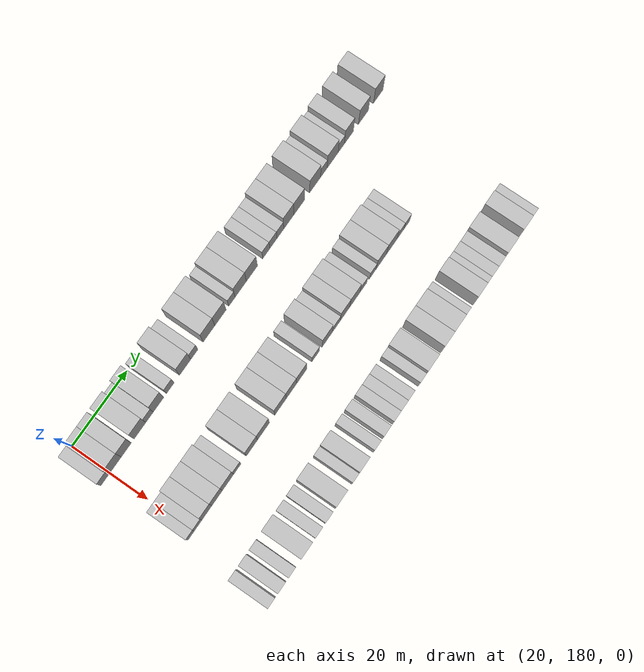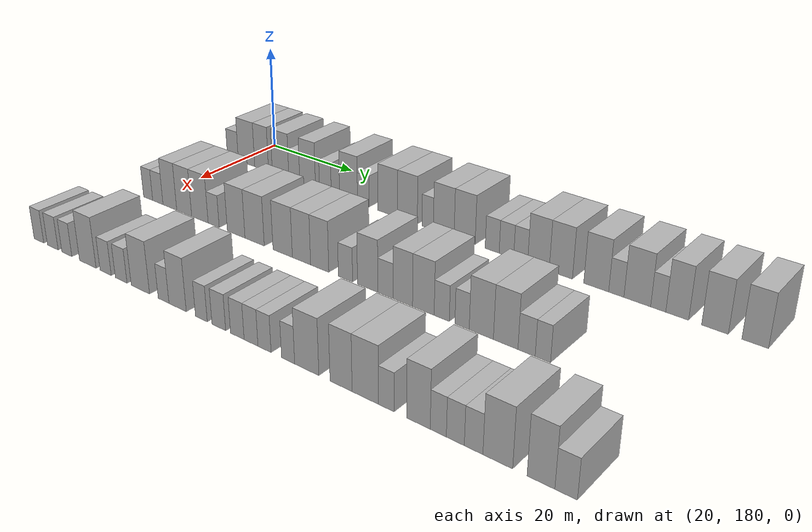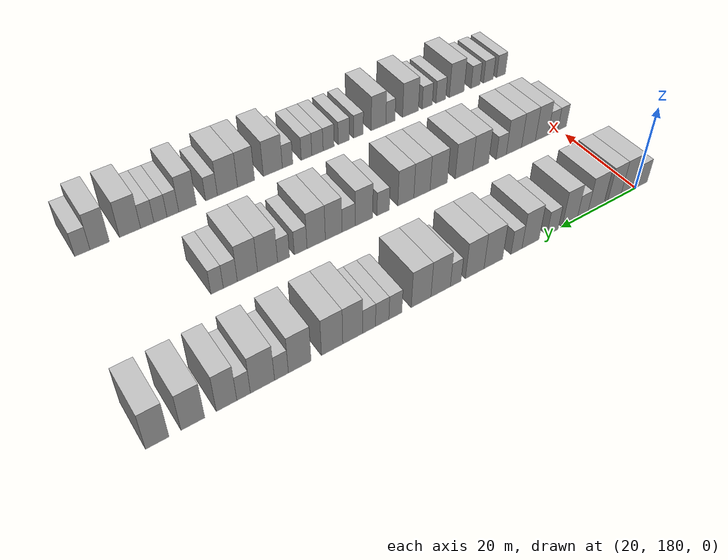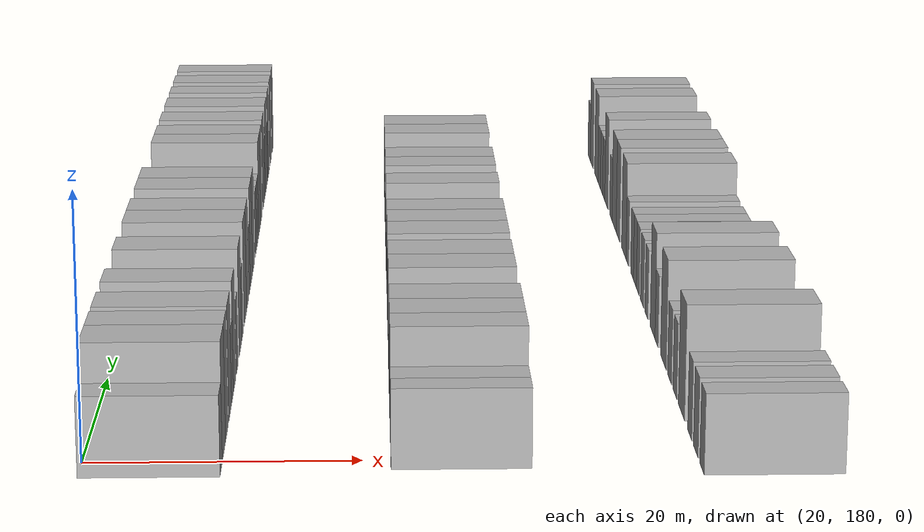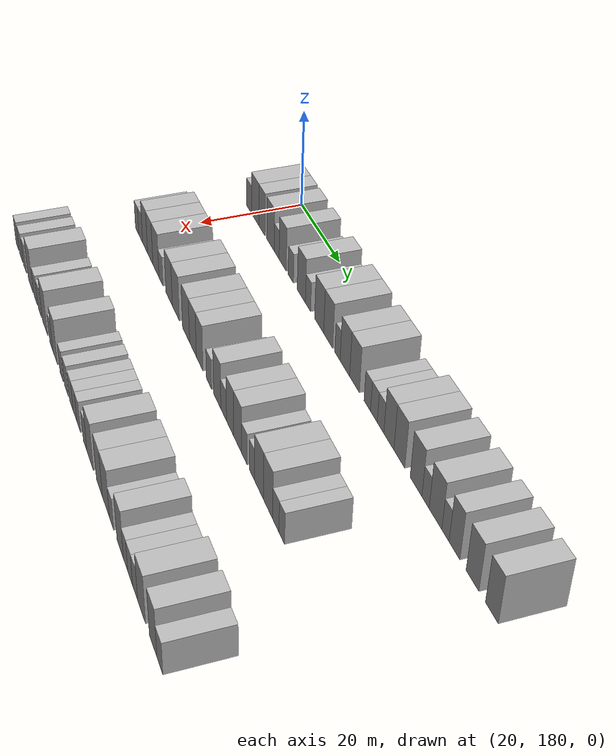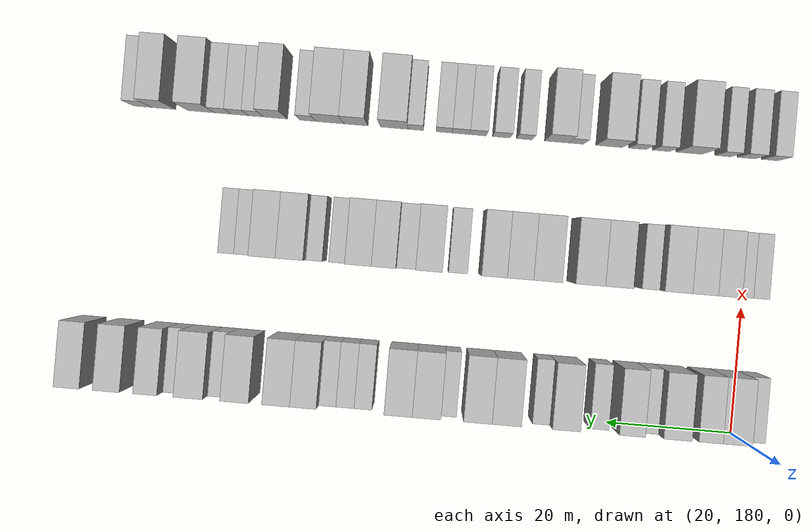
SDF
<sdf version="1.6">
 <world name="default">
  <model name="building_146">
   <static>1</static>
   <pose>25.0000 178.2394 0 0.000000 0.000000 0.000000</pose>
   <link name="link">
    <pose>0 0 3.00 0 0 0</pose>
    <collision name="collision"><geometry><box><size>10.0000 2.9960 6.0000</size></box></geometry></collision>
    <visual name="visual">
     <cast_shadows>0</cast_shadows>
     <geometry><box><size>10.0000 2.9960 6.0000</size></box></geometry>
     <material>
      <script>
       <uri>model://HANNAS_wall/materials/scripts</uri>
       <uri>model://HANNAS_wall/materials/textures</uri>
       <name>vrc/HANNAS_wall</name>
      </script>
     </material>
    </visual>
   </link>
  </model>
  <model name="building_147">
   <static>1</static>
   <pose>25.0000 181.9585 0 0.000000 0.000000 0.000000</pose>
   <link name="link">
    <pose>0 0 4.50 0 0 0</pose>
    <collision name="collision"><geometry><box><size>10.0000 4.4420 9.0000</size></box></geometry></collision>
    <visual name="visual">
     <cast_shadows>0</cast_shadows>
     <geometry><box><size>10.0000 4.4420 9.0000</size></box></geometry>
     <material>
      <script>
       <uri>model://HANNAS_wall/materials/scripts</uri>
       <uri>model://HANNAS_wall/materials/textures</uri>
       <name>vrc/HANNAS_wall</name>
      </script>
     </material>
    </visual>
   </link>
  </model>
  <model name="building_148">
   <static>1</static>
   <pose>25.0000 186.0088 0 0.000000 0.000000 0.000000</pose>
   <link name="link">
    <pose>0 0 4.50 0 0 0</pose>
    <collision name="collision"><geometry><box><size>10.0000 3.6587 9.0000</size></box></geometry></collision>
    <visual name="visual">
     <cast_shadows>0</cast_shadows>
     <geometry><box><size>10.0000 3.6587 9.0000</size></box></geometry>
     <material>
      <script>
       <uri>model://HANNAS_wall/materials/scripts</uri>
       <uri>model://HANNAS_wall/materials/textures</uri>
       <name>vrc/HANNAS_wall</name>
      </script>
     </material>
    </visual>
   </link>
  </model>
  <model name="building_149">
   <static>1</static>
   <pose>25.0000 190.9778 0 0.000000 0.000000 0.000000</pose>
   <link name="link">
    <pose>0 0 4.50 0 0 0</pose>
    <collision name="collision"><geometry><box><size>10.0000 4.2793 9.0000</size></box></geometry></collision>
    <visual name="visual">
     <cast_shadows>0</cast_shadows>
     <geometry><box><size>10.0000 4.2793 9.0000</size></box></geometry>
     <material>
      <script>
       <uri>model://HANNAS_wall/materials/scripts</uri>
       <uri>model://HANNAS_wall/materials/textures</uri>
       <name>vrc/HANNAS_wall</name>
      </script>
     </material>
    </visual>
   </link>
  </model>
  <model name="building_150">
   <static>1</static>
   <pose>25.0000 194.4975 0 0.000000 0.000000 0.000000</pose>
   <link name="link">
    <pose>0 0 3.00 0 0 0</pose>
    <collision name="collision"><geometry><box><size>10.0000 2.7600 6.0000</size></box></geometry></collision>
    <visual name="visual">
     <cast_shadows>0</cast_shadows>
     <geometry><box><size>10.0000 2.7600 6.0000</size></box></geometry>
     <material>
      <script>
       <uri>model://HANNAS_wall/materials/scripts</uri>
       <uri>model://HANNAS_wall/materials/textures</uri>
       <name>vrc/HANNAS_wall</name>
      </script>
     </material>
    </visual>
   </link>
  </model>
  <model name="building_151">
   <static>1</static>
   <pose>25.0000 197.8251 0 0.000000 0.000000 0.000000</pose>
   <link name="link">
    <pose>0 0 4.50 0 0 0</pose>
    <collision name="collision"><geometry><box><size>10.0000 3.8953 9.0000</size></box></geometry></collision>
    <visual name="visual">
     <cast_shadows>0</cast_shadows>
     <geometry><box><size>10.0000 3.8953 9.0000</size></box></geometry>
     <material>
      <script>
       <uri>model://HANNAS_wall/materials/scripts</uri>
       <uri>model://HANNAS_wall/materials/textures</uri>
       <name>vrc/HANNAS_wall</name>
      </script>
     </material>
    </visual>
   </link>
  </model>
  <model name="building_152">
   <static>1</static>
   <pose>25.0000 202.1901 0 0.000000 0.000000 0.000000</pose>
   <link name="link">
    <pose>0 0 3.00 0 0 0</pose>
    <collision name="collision"><geometry><box><size>10.0000 2.8348 6.0000</size></box></geometry></collision>
    <visual name="visual">
     <cast_shadows>0</cast_shadows>
     <geometry><box><size>10.0000 2.8348 6.0000</size></box></geometry>
     <material>
      <script>
       <uri>model://HANNAS_wall/materials/scripts</uri>
       <uri>model://HANNAS_wall/materials/textures</uri>
       <name>vrc/HANNAS_wall</name>
      </script>
     </material>
    </visual>
   </link>
  </model>
  <model name="building_153">
   <static>1</static>
   <pose>25.0000 207.7115 0 0.000000 0.000000 0.000000</pose>
   <link name="link">
    <pose>0 0 4.50 0 0 0</pose>
    <collision name="collision"><geometry><box><size>10.0000 4.2080 9.0000</size></box></geometry></collision>
    <visual name="visual">
     <cast_shadows>0</cast_shadows>
     <geometry><box><size>10.0000 4.2080 9.0000</size></box></geometry>
     <material>
      <script>
       <uri>model://HANNAS_wall/materials/scripts</uri>
       <uri>model://HANNAS_wall/materials/textures</uri>
       <name>vrc/HANNAS_wall</name>
      </script>
     </material>
    </visual>
   </link>
  </model>
  <model name="building_154">
   <static>1</static>
   <pose>25.0000 211.1468 0 0.000000 0.000000 0.000000</pose>
   <link name="link">
    <pose>0 0 3.00 0 0 0</pose>
    <collision name="collision"><geometry><box><size>10.0000 2.6626 6.0000</size></box></geometry></collision>
    <visual name="visual">
     <cast_shadows>0</cast_shadows>
     <geometry><box><size>10.0000 2.6626 6.0000</size></box></geometry>
     <material>
      <script>
       <uri>model://HANNAS_wall/materials/scripts</uri>
       <uri>model://HANNAS_wall/materials/textures</uri>
       <name>vrc/HANNAS_wall</name>
      </script>
     </material>
    </visual>
   </link>
  </model>
  <model name="building_155">
   <static>1</static>
   <pose>25.0000 216.6830 0 0.000000 0.000000 0.000000</pose>
   <link name="link">
    <pose>0 0 4.50 0 0 0</pose>
    <collision name="collision"><geometry><box><size>10.0000 4.4098 9.0000</size></box></geometry></collision>
    <visual name="visual">
     <cast_shadows>0</cast_shadows>
     <geometry><box><size>10.0000 4.4098 9.0000</size></box></geometry>
     <material>
      <script>
       <uri>model://HANNAS_wall/materials/scripts</uri>
       <uri>model://HANNAS_wall/materials/textures</uri>
       <name>vrc/HANNAS_wall</name>
      </script>
     </material>
    </visual>
   </link>
  </model>
  <model name="building_156">
   <static>1</static>
   <pose>25.0000 221.0291 0 0.000000 0.000000 0.000000</pose>
   <link name="link">
    <pose>0 0 4.50 0 0 0</pose>
    <collision name="collision"><geometry><box><size>10.0000 4.2823 9.0000</size></box></geometry></collision>
    <visual name="visual">
     <cast_shadows>0</cast_shadows>
     <geometry><box><size>10.0000 4.2823 9.0000</size></box></geometry>
     <material>
      <script>
       <uri>model://HANNAS_wall/materials/scripts</uri>
       <uri>model://HANNAS_wall/materials/textures</uri>
       <name>vrc/HANNAS_wall</name>
      </script>
     </material>
    </visual>
   </link>
  </model>
  <model name="building_157">
   <static>1</static>
   <pose>25.0000 225.3795 0 0.000000 0.000000 0.000000</pose>
   <link name="link">
    <pose>0 0 3.00 0 0 0</pose>
    <collision name="collision"><geometry><box><size>10.0000 2.4184 6.0000</size></box></geometry></collision>
    <visual name="visual">
     <cast_shadows>0</cast_shadows>
     <geometry><box><size>10.0000 2.4184 6.0000</size></box></geometry>
     <material>
      <script>
       <uri>model://HANNAS_wall/materials/scripts</uri>
       <uri>model://HANNAS_wall/materials/textures</uri>
       <name>vrc/HANNAS_wall</name>
      </script>
     </material>
    </visual>
   </link>
  </model>
  <model name="building_158">
   <static>1</static>
   <pose>25.0000 228.7411 0 0.000000 0.000000 0.000000</pose>
   <link name="link">
    <pose>0 0 4.50 0 0 0</pose>
    <collision name="collision"><geometry><box><size>10.0000 4.3048 9.0000</size></box></geometry></collision>
    <visual name="visual">
     <cast_shadows>0</cast_shadows>
     <geometry><box><size>10.0000 4.3048 9.0000</size></box></geometry>
     <material>
      <script>
       <uri>model://HANNAS_wall/materials/scripts</uri>
       <uri>model://HANNAS_wall/materials/textures</uri>
       <name>vrc/HANNAS_wall</name>
      </script>
     </material>
    </visual>
   </link>
  </model>
  <model name="building_159">
   <static>1</static>
   <pose>25.0000 233.0238 0 0.000000 0.000000 0.000000</pose>
   <link name="link">
    <pose>0 0 4.50 0 0 0</pose>
    <collision name="collision"><geometry><box><size>10.0000 4.2606 9.0000</size></box></geometry></collision>
    <visual name="visual">
     <cast_shadows>0</cast_shadows>
     <geometry><box><size>10.0000 4.2606 9.0000</size></box></geometry>
     <material>
      <script>
       <uri>model://HANNAS_wall/materials/scripts</uri>
       <uri>model://HANNAS_wall/materials/textures</uri>
       <name>vrc/HANNAS_wall</name>
      </script>
     </material>
    </visual>
   </link>
  </model>
  <model name="building_160">
   <static>1</static>
   <pose>25.0000 238.5244 0 0.000000 0.000000 0.000000</pose>
   <link name="link">
    <pose>0 0 3.00 0 0 0</pose>
    <collision name="collision"><geometry><box><size>10.0000 2.7406 6.0000</size></box></geometry></collision>
    <visual name="visual">
     <cast_shadows>0</cast_shadows>
     <geometry><box><size>10.0000 2.7406 6.0000</size></box></geometry>
     <material>
      <script>
       <uri>model://HANNAS_wall/materials/scripts</uri>
       <uri>model://HANNAS_wall/materials/textures</uri>
       <name>vrc/HANNAS_wall</name>
      </script>
     </material>
    </visual>
   </link>
  </model>
  <model name="building_161">
   <static>1</static>
   <pose>25.0000 241.2901 0 0.000000 0.000000 0.000000</pose>
   <link name="link">
    <pose>0 0 3.00 0 0 0</pose>
    <collision name="collision"><geometry><box><size>10.0000 2.7908 6.0000</size></box></geometry></collision>
    <visual name="visual">
     <cast_shadows>0</cast_shadows>
     <geometry><box><size>10.0000 2.7908 6.0000</size></box></geometry>
     <material>
      <script>
       <uri>model://HANNAS_wall/materials/scripts</uri>
       <uri>model://HANNAS_wall/materials/textures</uri>
       <name>vrc/HANNAS_wall</name>
      </script>
     </material>
    </visual>
   </link>
  </model>
  <model name="building_162">
   <static>1</static>
   <pose>25.0000 244.0082 0 0.000000 0.000000 0.000000</pose>
   <link name="link">
    <pose>0 0 3.00 0 0 0</pose>
    <collision name="collision"><geometry><box><size>10.0000 2.6453 6.0000</size></box></geometry></collision>
    <visual name="visual">
     <cast_shadows>0</cast_shadows>
     <geometry><box><size>10.0000 2.6453 6.0000</size></box></geometry>
     <material>
      <script>
       <uri>model://HANNAS_wall/materials/scripts</uri>
       <uri>model://HANNAS_wall/materials/textures</uri>
       <name>vrc/HANNAS_wall</name>
      </script>
     </material>
    </visual>
   </link>
  </model>
  <model name="building_163">
   <static>1</static>
   <pose>25.0000 247.3229 0 0.000000 0.000000 0.000000</pose>
   <link name="link">
    <pose>0 0 4.50 0 0 0</pose>
    <collision name="collision"><geometry><box><size>10.0000 3.9841 9.0000</size></box></geometry></collision>
    <visual name="visual">
     <cast_shadows>0</cast_shadows>
     <geometry><box><size>10.0000 3.9841 9.0000</size></box></geometry>
     <material>
      <script>
       <uri>model://HANNAS_wall/materials/scripts</uri>
       <uri>model://HANNAS_wall/materials/textures</uri>
       <name>vrc/HANNAS_wall</name>
      </script>
     </material>
    </visual>
   </link>
  </model>
  <model name="building_164">
   <static>1</static>
   <pose>25.0000 251.4096 0 0.000000 0.000000 0.000000</pose>
   <link name="link">
    <pose>0 0 4.50 0 0 0</pose>
    <collision name="collision"><geometry><box><size>10.0000 4.1894 9.0000</size></box></geometry></collision>
    <visual name="visual">
     <cast_shadows>0</cast_shadows>
     <geometry><box><size>10.0000 4.1894 9.0000</size></box></geometry>
     <material>
      <script>
       <uri>model://HANNAS_wall/materials/scripts</uri>
       <uri>model://HANNAS_wall/materials/textures</uri>
       <name>vrc/HANNAS_wall</name>
      </script>
     </material>
    </visual>
   </link>
  </model>
  <model name="building_165">
   <static>1</static>
   <pose>25.0000 257.6601 0 0.000000 0.000000 0.000000</pose>
   <link name="link">
    <pose>0 0 4.50 0 0 0</pose>
    <collision name="collision"><geometry><box><size>10.0000 4.3117 9.0000</size></box></geometry></collision>
    <visual name="visual">
     <cast_shadows>0</cast_shadows>
     <geometry><box><size>10.0000 4.3117 9.0000</size></box></geometry>
     <material>
      <script>
       <uri>model://HANNAS_wall/materials/scripts</uri>
       <uri>model://HANNAS_wall/materials/textures</uri>
       <name>vrc/HANNAS_wall</name>
      </script>
     </material>
    </visual>
   </link>
  </model>
  <model name="building_166">
   <static>1</static>
   <pose>25.0000 261.1040 0 0.000000 0.000000 0.000000</pose>
   <link name="link">
    <pose>0 0 3.00 0 0 0</pose>
    <collision name="collision"><geometry><box><size>10.0000 2.5760 6.0000</size></box></geometry></collision>
    <visual name="visual">
     <cast_shadows>0</cast_shadows>
     <geometry><box><size>10.0000 2.5760 6.0000</size></box></geometry>
     <material>
      <script>
       <uri>model://HANNAS_wall/materials/scripts</uri>
       <uri>model://HANNAS_wall/materials/textures</uri>
       <name>vrc/HANNAS_wall</name>
      </script>
     </material>
    </visual>
   </link>
  </model>
  <model name="building_167">
   <static>1</static>
   <pose>25.0000 264.6006 0 0.000000 0.000000 0.000000</pose>
   <link name="link">
    <pose>0 0 4.50 0 0 0</pose>
    <collision name="collision"><geometry><box><size>10.0000 4.4172 9.0000</size></box></geometry></collision>
    <visual name="visual">
     <cast_shadows>0</cast_shadows>
     <geometry><box><size>10.0000 4.4172 9.0000</size></box></geometry>
     <material>
      <script>
       <uri>model://HANNAS_wall/materials/scripts</uri>
       <uri>model://HANNAS_wall/materials/textures</uri>
       <name>vrc/HANNAS_wall</name>
      </script>
     </material>
    </visual>
   </link>
  </model>
  <model name="building_168">
   <static>1</static>
   <pose>25.0000 268.0297 0 0.000000 0.000000 0.000000</pose>
   <link name="link">
    <pose>0 0 3.00 0 0 0</pose>
    <collision name="collision"><geometry><box><size>10.0000 2.4409 6.0000</size></box></geometry></collision>
    <visual name="visual">
     <cast_shadows>0</cast_shadows>
     <geometry><box><size>10.0000 2.4409 6.0000</size></box></geometry>
     <material>
      <script>
       <uri>model://HANNAS_wall/materials/scripts</uri>
       <uri>model://HANNAS_wall/materials/textures</uri>
       <name>vrc/HANNAS_wall</name>
      </script>
     </material>
    </visual>
   </link>
  </model>
  <model name="building_169">
   <static>1</static>
   <pose>25.0000 271.0596 0 0.000000 0.000000 0.000000</pose>
   <link name="link">
    <pose>0 0 4.50 0 0 0</pose>
    <collision name="collision"><geometry><box><size>10.0000 3.6190 9.0000</size></box></geometry></collision>
    <visual name="visual">
     <cast_shadows>0</cast_shadows>
     <geometry><box><size>10.0000 3.6190 9.0000</size></box></geometry>
     <material>
      <script>
       <uri>model://HANNAS_wall/materials/scripts</uri>
       <uri>model://HANNAS_wall/materials/textures</uri>
       <name>vrc/HANNAS_wall</name>
      </script>
     </material>
    </visual>
   </link>
  </model>
  <model name="building_170">
   <static>1</static>
   <pose>25.0000 276.8958 0 0.000000 0.000000 0.000000</pose>
   <link name="link">
    <pose>0 0 4.50 0 0 0</pose>
    <collision name="collision"><geometry><box><size>10.0000 4.0534 9.0000</size></box></geometry></collision>
    <visual name="visual">
     <cast_shadows>0</cast_shadows>
     <geometry><box><size>10.0000 4.0534 9.0000</size></box></geometry>
     <material>
      <script>
       <uri>model://HANNAS_wall/materials/scripts</uri>
       <uri>model://HANNAS_wall/materials/textures</uri>
       <name>vrc/HANNAS_wall</name>
      </script>
     </material>
    </visual>
   </link>
  </model>
  <model name="building_171">
   <static>1</static>
   <pose>25.0000 282.8653 0 0.000000 0.000000 0.000000</pose>
   <link name="link">
    <pose>0 0 4.50 0 0 0</pose>
    <collision name="collision"><geometry><box><size>10.0000 3.8855 9.0000</size></box></geometry></collision>
    <visual name="visual">
     <cast_shadows>0</cast_shadows>
     <geometry><box><size>10.0000 3.8855 9.0000</size></box></geometry>
     <material>
      <script>
       <uri>model://HANNAS_wall/materials/scripts</uri>
       <uri>model://HANNAS_wall/materials/textures</uri>
       <name>vrc/HANNAS_wall</name>
      </script>
     </material>
    </visual>
   </link>
  </model>
  <model name="building_337">
   <static>1</static>
   <pose>47.0000 179.1716 0 0.000000 0.000000 0.000000</pose>
   <link name="link">
    <pose>0 0 3.00 0 0 0</pose>
    <collision name="collision"><geometry><box><size>10.0000 2.4528 6.0000</size></box></geometry></collision>
    <visual name="visual">
     <cast_shadows>0</cast_shadows>
     <geometry><box><size>10.0000 2.4528 6.0000</size></box></geometry>
     <material>
      <script>
       <uri>model://HANNAS_wall/materials/scripts</uri>
       <uri>model://HANNAS_wall/materials/textures</uri>
       <name>vrc/HANNAS_wall</name>
      </script>
     </material>
    </visual>
   </link>
  </model>
  <model name="building_338">
   <static>1</static>
   <pose>47.0000 181.7850 0 0.000000 0.000000 0.000000</pose>
   <link name="link">
    <pose>0 0 3.00 0 0 0</pose>
    <collision name="collision"><geometry><box><size>10.0000 2.7741 6.0000</size></box></geometry></collision>
    <visual name="visual">
     <cast_shadows>0</cast_shadows>
     <geometry><box><size>10.0000 2.7741 6.0000</size></box></geometry>
     <material>
      <script>
       <uri>model://HANNAS_wall/materials/scripts</uri>
       <uri>model://HANNAS_wall/materials/textures</uri>
       <name>vrc/HANNAS_wall</name>
      </script>
     </material>
    </visual>
   </link>
  </model>
  <model name="building_339">
   <static>1</static>
   <pose>47.0000 184.9766 0 0.000000 0.000000 0.000000</pose>
   <link name="link">
    <pose>0 0 4.50 0 0 0</pose>
    <collision name="collision"><geometry><box><size>10.0000 3.6090 9.0000</size></box></geometry></collision>
    <visual name="visual">
     <cast_shadows>0</cast_shadows>
     <geometry><box><size>10.0000 3.6090 9.0000</size></box></geometry>
     <material>
      <script>
       <uri>model://HANNAS_wall/materials/scripts</uri>
       <uri>model://HANNAS_wall/materials/textures</uri>
       <name>vrc/HANNAS_wall</name>
      </script>
     </material>
    </visual>
   </link>
  </model>
  <model name="building_340">
   <static>1</static>
   <pose>47.0000 188.7111 0 0.000000 0.000000 0.000000</pose>
   <link name="link">
    <pose>0 0 4.50 0 0 0</pose>
    <collision name="collision"><geometry><box><size>10.0000 3.8599 9.0000</size></box></geometry></collision>
    <visual name="visual">
     <cast_shadows>0</cast_shadows>
     <geometry><box><size>10.0000 3.8599 9.0000</size></box></geometry>
     <material>
      <script>
       <uri>model://HANNAS_wall/materials/scripts</uri>
       <uri>model://HANNAS_wall/materials/textures</uri>
       <name>vrc/HANNAS_wall</name>
      </script>
     </material>
    </visual>
   </link>
  </model>
  <model name="building_341">
   <static>1</static>
   <pose>47.0000 192.7140 0 0.000000 0.000000 0.000000</pose>
   <link name="link">
    <pose>0 0 4.50 0 0 0</pose>
    <collision name="collision"><geometry><box><size>10.0000 4.1460 9.0000</size></box></geometry></collision>
    <visual name="visual">
     <cast_shadows>0</cast_shadows>
     <geometry><box><size>10.0000 4.1460 9.0000</size></box></geometry>
     <material>
      <script>
       <uri>model://HANNAS_wall/materials/scripts</uri>
       <uri>model://HANNAS_wall/materials/textures</uri>
       <name>vrc/HANNAS_wall</name>
      </script>
     </material>
    </visual>
   </link>
  </model>
  <model name="building_342">
   <static>1</static>
   <pose>47.0000 196.1461 0 0.000000 0.000000 0.000000</pose>
   <link name="link">
    <pose>0 0 3.00 0 0 0</pose>
    <collision name="collision"><geometry><box><size>10.0000 2.7181 6.0000</size></box></geometry></collision>
    <visual name="visual">
     <cast_shadows>0</cast_shadows>
     <geometry><box><size>10.0000 2.7181 6.0000</size></box></geometry>
     <material>
      <script>
       <uri>model://HANNAS_wall/materials/scripts</uri>
       <uri>model://HANNAS_wall/materials/textures</uri>
       <name>vrc/HANNAS_wall</name>
      </script>
     </material>
    </visual>
   </link>
  </model>
  <model name="building_343">
   <static>1</static>
   <pose>47.0000 201.6091 0 0.000000 0.000000 0.000000</pose>
   <link name="link">
    <pose>0 0 4.50 0 0 0</pose>
    <collision name="collision"><geometry><box><size>10.0000 4.2081 9.0000</size></box></geometry></collision>
    <visual name="visual">
     <cast_shadows>0</cast_shadows>
     <geometry><box><size>10.0000 4.2081 9.0000</size></box></geometry>
     <material>
      <script>
       <uri>model://HANNAS_wall/materials/scripts</uri>
       <uri>model://HANNAS_wall/materials/textures</uri>
       <name>vrc/HANNAS_wall</name>
      </script>
     </material>
    </visual>
   </link>
  </model>
  <model name="building_344">
   <static>1</static>
   <pose>47.0000 205.9500 0 0.000000 0.000000 0.000000</pose>
   <link name="link">
    <pose>0 0 4.50 0 0 0</pose>
    <collision name="collision"><geometry><box><size>10.0000 4.4737 9.0000</size></box></geometry></collision>
    <visual name="visual">
     <cast_shadows>0</cast_shadows>
     <geometry><box><size>10.0000 4.4737 9.0000</size></box></geometry>
     <material>
      <script>
       <uri>model://HANNAS_wall/materials/scripts</uri>
       <uri>model://HANNAS_wall/materials/textures</uri>
       <name>vrc/HANNAS_wall</name>
      </script>
     </material>
    </visual>
   </link>
  </model>
  <model name="building_345">
   <static>1</static>
   <pose>47.0000 212.3474 0 0.000000 0.000000 0.000000</pose>
   <link name="link">
    <pose>0 0 4.50 0 0 0</pose>
    <collision name="collision"><geometry><box><size>10.0000 4.3212 9.0000</size></box></geometry></collision>
    <visual name="visual">
     <cast_shadows>0</cast_shadows>
     <geometry><box><size>10.0000 4.3212 9.0000</size></box></geometry>
     <material>
      <script>
       <uri>model://HANNAS_wall/materials/scripts</uri>
       <uri>model://HANNAS_wall/materials/textures</uri>
       <name>vrc/HANNAS_wall</name>
      </script>
     </material>
    </visual>
   </link>
  </model>
  <model name="building_346">
   <static>1</static>
   <pose>47.0000 216.4949 0 0.000000 0.000000 0.000000</pose>
   <link name="link">
    <pose>0 0 4.50 0 0 0</pose>
    <collision name="collision"><geometry><box><size>10.0000 3.9738 9.0000</size></box></geometry></collision>
    <visual name="visual">
     <cast_shadows>0</cast_shadows>
     <geometry><box><size>10.0000 3.9738 9.0000</size></box></geometry>
     <material>
      <script>
       <uri>model://HANNAS_wall/materials/scripts</uri>
       <uri>model://HANNAS_wall/materials/textures</uri>
       <name>vrc/HANNAS_wall</name>
      </script>
     </material>
    </visual>
   </link>
  </model>
  <model name="building_347">
   <static>1</static>
   <pose>47.0000 220.4065 0 0.000000 0.000000 0.000000</pose>
   <link name="link">
    <pose>0 0 4.50 0 0 0</pose>
    <collision name="collision"><geometry><box><size>10.0000 3.8495 9.0000</size></box></geometry></collision>
    <visual name="visual">
     <cast_shadows>0</cast_shadows>
     <geometry><box><size>10.0000 3.8495 9.0000</size></box></geometry>
     <material>
      <script>
       <uri>model://HANNAS_wall/materials/scripts</uri>
       <uri>model://HANNAS_wall/materials/textures</uri>
       <name>vrc/HANNAS_wall</name>
      </script>
     </material>
    </visual>
   </link>
  </model>
  <model name="building_348">
   <static>1</static>
   <pose>47.0000 225.7850 0 0.000000 0.000000 0.000000</pose>
   <link name="link">
    <pose>0 0 3.00 0 0 0</pose>
    <collision name="collision"><geometry><box><size>10.0000 2.9074 6.0000</size></box></geometry></collision>
    <visual name="visual">
     <cast_shadows>0</cast_shadows>
     <geometry><box><size>10.0000 2.9074 6.0000</size></box></geometry>
     <material>
      <script>
       <uri>model://HANNAS_wall/materials/scripts</uri>
       <uri>model://HANNAS_wall/materials/textures</uri>
       <name>vrc/HANNAS_wall</name>
      </script>
     </material>
    </visual>
   </link>
  </model>
  <model name="building_349">
   <static>1</static>
   <pose>47.0000 230.2498 0 0.000000 0.000000 0.000000</pose>
   <link name="link">
    <pose>0 0 4.50 0 0 0</pose>
    <collision name="collision"><geometry><box><size>10.0000 4.0223 9.0000</size></box></geometry></collision>
    <visual name="visual">
     <cast_shadows>0</cast_shadows>
     <geometry><box><size>10.0000 4.0223 9.0000</size></box></geometry>
     <material>
      <script>
       <uri>model://HANNAS_wall/materials/scripts</uri>
       <uri>model://HANNAS_wall/materials/textures</uri>
       <name>vrc/HANNAS_wall</name>
      </script>
     </material>
    </visual>
   </link>
  </model>
  <model name="building_350">
   <static>1</static>
   <pose>47.0000 233.7480 0 0.000000 0.000000 0.000000</pose>
   <link name="link">
    <pose>0 0 3.00 0 0 0</pose>
    <collision name="collision"><geometry><box><size>10.0000 2.9741 6.0000</size></box></geometry></collision>
    <visual name="visual">
     <cast_shadows>0</cast_shadows>
     <geometry><box><size>10.0000 2.9741 6.0000</size></box></geometry>
     <material>
      <script>
       <uri>model://HANNAS_wall/materials/scripts</uri>
       <uri>model://HANNAS_wall/materials/textures</uri>
       <name>vrc/HANNAS_wall</name>
      </script>
     </material>
    </visual>
   </link>
  </model>
  <model name="building_351">
   <static>1</static>
   <pose>47.0000 237.0849 0 0.000000 0.000000 0.000000</pose>
   <link name="link">
    <pose>0 0 4.50 0 0 0</pose>
    <collision name="collision"><geometry><box><size>10.0000 3.6997 9.0000</size></box></geometry></collision>
    <visual name="visual">
     <cast_shadows>0</cast_shadows>
     <geometry><box><size>10.0000 3.6997 9.0000</size></box></geometry>
     <material>
      <script>
       <uri>model://HANNAS_wall/materials/scripts</uri>
       <uri>model://HANNAS_wall/materials/textures</uri>
       <name>vrc/HANNAS_wall</name>
      </script>
     </material>
    </visual>
   </link>
  </model>
  <model name="building_352">
   <static>1</static>
   <pose>47.0000 240.9360 0 0.000000 0.000000 0.000000</pose>
   <link name="link">
    <pose>0 0 4.50 0 0 0</pose>
    <collision name="collision"><geometry><box><size>10.0000 4.0025 9.0000</size></box></geometry></collision>
    <visual name="visual">
     <cast_shadows>0</cast_shadows>
     <geometry><box><size>10.0000 4.0025 9.0000</size></box></geometry>
     <material>
      <script>
       <uri>model://HANNAS_wall/materials/scripts</uri>
       <uri>model://HANNAS_wall/materials/textures</uri>
       <name>vrc/HANNAS_wall</name>
      </script>
     </material>
    </visual>
   </link>
  </model>
  <model name="building_353">
   <static>1</static>
   <pose>47.0000 244.3062 0 0.000000 0.000000 0.000000</pose>
   <link name="link">
    <pose>0 0 3.00 0 0 0</pose>
    <collision name="collision"><geometry><box><size>10.0000 2.7379 6.0000</size></box></geometry></collision>
    <visual name="visual">
     <cast_shadows>0</cast_shadows>
     <geometry><box><size>10.0000 2.7379 6.0000</size></box></geometry>
     <material>
      <script>
       <uri>model://HANNAS_wall/materials/scripts</uri>
       <uri>model://HANNAS_wall/materials/textures</uri>
       <name>vrc/HANNAS_wall</name>
      </script>
     </material>
    </visual>
   </link>
  </model>
  <model name="building_354">
   <static>1</static>
   <pose>47.0000 247.9343 0 0.000000 0.000000 0.000000</pose>
   <link name="link">
    <pose>0 0 3.00 0 0 0</pose>
    <collision name="collision"><geometry><box><size>10.0000 2.5182 6.0000</size></box></geometry></collision>
    <visual name="visual">
     <cast_shadows>0</cast_shadows>
     <geometry><box><size>10.0000 2.5182 6.0000</size></box></geometry>
     <material>
      <script>
       <uri>model://HANNAS_wall/materials/scripts</uri>
       <uri>model://HANNAS_wall/materials/textures</uri>
       <name>vrc/HANNAS_wall</name>
      </script>
     </material>
    </visual>
   </link>
  </model>
  <model name="building_355">
   <static>1</static>
   <pose>47.0000 251.2752 0 0.000000 0.000000 0.000000</pose>
   <link name="link">
    <pose>0 0 4.50 0 0 0</pose>
    <collision name="collision"><geometry><box><size>10.0000 4.1636 9.0000</size></box></geometry></collision>
    <visual name="visual">
     <cast_shadows>0</cast_shadows>
     <geometry><box><size>10.0000 4.1636 9.0000</size></box></geometry>
     <material>
      <script>
       <uri>model://HANNAS_wall/materials/scripts</uri>
       <uri>model://HANNAS_wall/materials/textures</uri>
       <name>vrc/HANNAS_wall</name>
      </script>
     </material>
    </visual>
   </link>
  </model>
  <model name="building_356">
   <static>1</static>
   <pose>47.0000 255.4088 0 0.000000 0.000000 0.000000</pose>
   <link name="link">
    <pose>0 0 4.50 0 0 0</pose>
    <collision name="collision"><geometry><box><size>10.0000 4.1036 9.0000</size></box></geometry></collision>
    <visual name="visual">
     <cast_shadows>0</cast_shadows>
     <geometry><box><size>10.0000 4.1036 9.0000</size></box></geometry>
     <material>
      <script>
       <uri>model://HANNAS_wall/materials/scripts</uri>
       <uri>model://HANNAS_wall/materials/textures</uri>
       <name>vrc/HANNAS_wall</name>
      </script>
     </material>
    </visual>
   </link>
  </model>
  <model name="building_357">
   <static>1</static>
   <pose>47.0000 258.8620 0 0.000000 0.000000 0.000000</pose>
   <link name="link">
    <pose>0 0 3.00 0 0 0</pose>
    <collision name="collision"><geometry><box><size>10.0000 2.8027 6.0000</size></box></geometry></collision>
    <visual name="visual">
     <cast_shadows>0</cast_shadows>
     <geometry><box><size>10.0000 2.8027 6.0000</size></box></geometry>
     <material>
      <script>
       <uri>model://HANNAS_wall/materials/scripts</uri>
       <uri>model://HANNAS_wall/materials/textures</uri>
       <name>vrc/HANNAS_wall</name>
      </script>
     </material>
    </visual>
   </link>
  </model>
  <model name="building_358">
   <static>1</static>
   <pose>47.0000 261.4917 0 0.000000 0.000000 0.000000</pose>
   <link name="link">
    <pose>0 0 3.00 0 0 0</pose>
    <collision name="collision"><geometry><box><size>10.0000 2.4567 6.0000</size></box></geometry></collision>
    <visual name="visual">
     <cast_shadows>0</cast_shadows>
     <geometry><box><size>10.0000 2.4567 6.0000</size></box></geometry>
     <material>
      <script>
       <uri>model://HANNAS_wall/materials/scripts</uri>
       <uri>model://HANNAS_wall/materials/textures</uri>
       <name>vrc/HANNAS_wall</name>
      </script>
     </material>
    </visual>
   </link>
  </model>
  <model name="building_522">
   <static>1</static>
   <pose>69.0000 177.5416 0 0.000000 0.000000 0.000000</pose>
   <link name="link">
    <pose>0 0 3.00 0 0 0</pose>
    <collision name="collision"><geometry><box><size>10.0000 2.6356 6.0000</size></box></geometry></collision>
    <visual name="visual">
     <cast_shadows>0</cast_shadows>
     <geometry><box><size>10.0000 2.6356 6.0000</size></box></geometry>
     <material>
      <script>
       <uri>model://HANNAS_wall/materials/scripts</uri>
       <uri>model://HANNAS_wall/materials/textures</uri>
       <name>vrc/HANNAS_wall</name>
      </script>
     </material>
    </visual>
   </link>
  </model>
  <model name="building_523">
   <static>1</static>
   <pose>69.0000 181.2976 0 0.000000 0.000000 0.000000</pose>
   <link name="link">
    <pose>0 0 3.00 0 0 0</pose>
    <collision name="collision"><geometry><box><size>10.0000 2.8765 6.0000</size></box></geometry></collision>
    <visual name="visual">
     <cast_shadows>0</cast_shadows>
     <geometry><box><size>10.0000 2.8765 6.0000</size></box></geometry>
     <material>
      <script>
       <uri>model://HANNAS_wall/materials/scripts</uri>
       <uri>model://HANNAS_wall/materials/textures</uri>
       <name>vrc/HANNAS_wall</name>
      </script>
     </material>
    </visual>
   </link>
  </model>
  <model name="building_524">
   <static>1</static>
   <pose>69.0000 185.0477 0 0.000000 0.000000 0.000000</pose>
   <link name="link">
    <pose>0 0 3.00 0 0 0</pose>
    <collision name="collision"><geometry><box><size>10.0000 2.6237 6.0000</size></box></geometry></collision>
    <visual name="visual">
     <cast_shadows>0</cast_shadows>
     <geometry><box><size>10.0000 2.6237 6.0000</size></box></geometry>
     <material>
      <script>
       <uri>model://HANNAS_wall/materials/scripts</uri>
       <uri>model://HANNAS_wall/materials/textures</uri>
       <name>vrc/HANNAS_wall</name>
      </script>
     </material>
    </visual>
   </link>
  </model>
  <model name="building_525">
   <static>1</static>
   <pose>69.0000 190.4572 0 0.000000 0.000000 0.000000</pose>
   <link name="link">
    <pose>0 0 4.50 0 0 0</pose>
    <collision name="collision"><geometry><box><size>10.0000 4.1953 9.0000</size></box></geometry></collision>
    <visual name="visual">
     <cast_shadows>0</cast_shadows>
     <geometry><box><size>10.0000 4.1953 9.0000</size></box></geometry>
     <material>
      <script>
       <uri>model://HANNAS_wall/materials/scripts</uri>
       <uri>model://HANNAS_wall/materials/textures</uri>
       <name>vrc/HANNAS_wall</name>
      </script>
     </material>
    </visual>
   </link>
  </model>
  <model name="building_526">
   <static>1</static>
   <pose>69.0000 194.9336 0 0.000000 0.000000 0.000000</pose>
   <link name="link">
    <pose>0 0 3.00 0 0 0</pose>
    <collision name="collision"><geometry><box><size>10.0000 2.7575 6.0000</size></box></geometry></collision>
    <visual name="visual">
     <cast_shadows>0</cast_shadows>
     <geometry><box><size>10.0000 2.7575 6.0000</size></box></geometry>
     <material>
      <script>
       <uri>model://HANNAS_wall/materials/scripts</uri>
       <uri>model://HANNAS_wall/materials/textures</uri>
       <name>vrc/HANNAS_wall</name>
      </script>
     </material>
    </visual>
   </link>
  </model>
  <model name="building_527">
   <static>1</static>
   <pose>69.0000 198.7167 0 0.000000 0.000000 0.000000</pose>
   <link name="link">
    <pose>0 0 3.00 0 0 0</pose>
    <collision name="collision"><geometry><box><size>10.0000 2.8086 6.0000</size></box></geometry></collision>
    <visual name="visual">
     <cast_shadows>0</cast_shadows>
     <geometry><box><size>10.0000 2.8086 6.0000</size></box></geometry>
     <material>
      <script>
       <uri>model://HANNAS_wall/materials/scripts</uri>
       <uri>model://HANNAS_wall/materials/textures</uri>
       <name>vrc/HANNAS_wall</name>
      </script>
     </material>
    </visual>
   </link>
  </model>
  <model name="building_528">
   <static>1</static>
   <pose>69.0000 203.2539 0 0.000000 0.000000 0.000000</pose>
   <link name="link">
    <pose>0 0 4.50 0 0 0</pose>
    <collision name="collision"><geometry><box><size>10.0000 4.2658 9.0000</size></box></geometry></collision>
    <visual name="visual">
     <cast_shadows>0</cast_shadows>
     <geometry><box><size>10.0000 4.2658 9.0000</size></box></geometry>
     <material>
      <script>
       <uri>model://HANNAS_wall/materials/scripts</uri>
       <uri>model://HANNAS_wall/materials/textures</uri>
       <name>vrc/HANNAS_wall</name>
      </script>
     </material>
    </visual>
   </link>
  </model>
  <model name="building_529">
   <static>1</static>
   <pose>69.0000 208.5950 0 0.000000 0.000000 0.000000</pose>
   <link name="link">
    <pose>0 0 3.00 0 0 0</pose>
    <collision name="collision"><geometry><box><size>10.0000 2.4164 6.0000</size></box></geometry></collision>
    <visual name="visual">
     <cast_shadows>0</cast_shadows>
     <geometry><box><size>10.0000 2.4164 6.0000</size></box></geometry>
     <material>
      <script>
       <uri>model://HANNAS_wall/materials/scripts</uri>
       <uri>model://HANNAS_wall/materials/textures</uri>
       <name>vrc/HANNAS_wall</name>
      </script>
     </material>
    </visual>
   </link>
  </model>
  <model name="building_530">
   <static>1</static>
   <pose>69.0000 211.7114 0 0.000000 0.000000 0.000000</pose>
   <link name="link">
    <pose>0 0 4.50 0 0 0</pose>
    <collision name="collision"><geometry><box><size>10.0000 3.8164 9.0000</size></box></geometry></collision>
    <visual name="visual">
     <cast_shadows>0</cast_shadows>
     <geometry><box><size>10.0000 3.8164 9.0000</size></box></geometry>
     <material>
      <script>
       <uri>model://HANNAS_wall/materials/scripts</uri>
       <uri>model://HANNAS_wall/materials/textures</uri>
       <name>vrc/HANNAS_wall</name>
      </script>
     </material>
    </visual>
   </link>
  </model>
  <model name="building_531">
   <static>1</static>
   <pose>69.0000 216.8738 0 0.000000 0.000000 0.000000</pose>
   <link name="link">
    <pose>0 0 3.00 0 0 0</pose>
    <collision name="collision"><geometry><box><size>10.0000 2.5084 6.0000</size></box></geometry></collision>
    <visual name="visual">
     <cast_shadows>0</cast_shadows>
     <geometry><box><size>10.0000 2.5084 6.0000</size></box></geometry>
     <material>
      <script>
       <uri>model://HANNAS_wall/materials/scripts</uri>
       <uri>model://HANNAS_wall/materials/textures</uri>
       <name>vrc/HANNAS_wall</name>
      </script>
     </material>
    </visual>
   </link>
  </model>
  <model name="building_532">
   <static>1</static>
   <pose>69.0000 220.5461 0 0.000000 0.000000 0.000000</pose>
   <link name="link">
    <pose>0 0 3.00 0 0 0</pose>
    <collision name="collision"><geometry><box><size>10.0000 2.8362 6.0000</size></box></geometry></collision>
    <visual name="visual">
     <cast_shadows>0</cast_shadows>
     <geometry><box><size>10.0000 2.8362 6.0000</size></box></geometry>
     <material>
      <script>
       <uri>model://HANNAS_wall/materials/scripts</uri>
       <uri>model://HANNAS_wall/materials/textures</uri>
       <name>vrc/HANNAS_wall</name>
      </script>
     </material>
    </visual>
   </link>
  </model>
  <model name="building_533">
   <static>1</static>
   <pose>69.0000 224.3293 0 0.000000 0.000000 0.000000</pose>
   <link name="link">
    <pose>0 0 3.00 0 0 0</pose>
    <collision name="collision"><geometry><box><size>10.0000 2.7302 6.0000</size></box></geometry></collision>
    <visual name="visual">
     <cast_shadows>0</cast_shadows>
     <geometry><box><size>10.0000 2.7302 6.0000</size></box></geometry>
     <material>
      <script>
       <uri>model://HANNAS_wall/materials/scripts</uri>
       <uri>model://HANNAS_wall/materials/textures</uri>
       <name>vrc/HANNAS_wall</name>
      </script>
     </material>
    </visual>
   </link>
  </model>
  <model name="building_534">
   <static>1</static>
   <pose>69.0000 227.0672 0 0.000000 0.000000 0.000000</pose>
   <link name="link">
    <pose>0 0 3.00 0 0 0</pose>
    <collision name="collision"><geometry><box><size>10.0000 2.7456 6.0000</size></box></geometry></collision>
    <visual name="visual">
     <cast_shadows>0</cast_shadows>
     <geometry><box><size>10.0000 2.7456 6.0000</size></box></geometry>
     <material>
      <script>
       <uri>model://HANNAS_wall/materials/scripts</uri>
       <uri>model://HANNAS_wall/materials/textures</uri>
       <name>vrc/HANNAS_wall</name>
      </script>
     </material>
    </visual>
   </link>
  </model>
  <model name="building_535">
   <static>1</static>
   <pose>69.0000 229.7122 0 0.000000 0.000000 0.000000</pose>
   <link name="link">
    <pose>0 0 3.00 0 0 0</pose>
    <collision name="collision"><geometry><box><size>10.0000 2.5444 6.0000</size></box></geometry></collision>
    <visual name="visual">
     <cast_shadows>0</cast_shadows>
     <geometry><box><size>10.0000 2.5444 6.0000</size></box></geometry>
     <material>
      <script>
       <uri>model://HANNAS_wall/materials/scripts</uri>
       <uri>model://HANNAS_wall/materials/textures</uri>
       <name>vrc/HANNAS_wall</name>
      </script>
     </material>
    </visual>
   </link>
  </model>
  <model name="building_536">
   <static>1</static>
   <pose>69.0000 234.2170 0 0.000000 0.000000 0.000000</pose>
   <link name="link">
    <pose>0 0 3.00 0 0 0</pose>
    <collision name="collision"><geometry><box><size>10.0000 2.4654 6.0000</size></box></geometry></collision>
    <visual name="visual">
     <cast_shadows>0</cast_shadows>
     <geometry><box><size>10.0000 2.4654 6.0000</size></box></geometry>
     <material>
      <script>
       <uri>model://HANNAS_wall/materials/scripts</uri>
       <uri>model://HANNAS_wall/materials/textures</uri>
       <name>vrc/HANNAS_wall</name>
      </script>
     </material>
    </visual>
   </link>
  </model>
  <model name="building_537">
   <static>1</static>
   <pose>69.0000 237.6625 0 0.000000 0.000000 0.000000</pose>
   <link name="link">
    <pose>0 0 4.50 0 0 0</pose>
    <collision name="collision"><geometry><box><size>10.0000 4.4255 9.0000</size></box></geometry></collision>
    <visual name="visual">
     <cast_shadows>0</cast_shadows>
     <geometry><box><size>10.0000 4.4255 9.0000</size></box></geometry>
     <material>
      <script>
       <uri>model://HANNAS_wall/materials/scripts</uri>
       <uri>model://HANNAS_wall/materials/textures</uri>
       <name>vrc/HANNAS_wall</name>
      </script>
     </material>
    </visual>
   </link>
  </model>
  <model name="building_538">
   <static>1</static>
   <pose>69.0000 243.8018 0 0.000000 0.000000 0.000000</pose>
   <link name="link">
    <pose>0 0 4.50 0 0 0</pose>
    <collision name="collision"><geometry><box><size>10.0000 3.8533 9.0000</size></box></geometry></collision>
    <visual name="visual">
     <cast_shadows>0</cast_shadows>
     <geometry><box><size>10.0000 3.8533 9.0000</size></box></geometry>
     <material>
      <script>
       <uri>model://HANNAS_wall/materials/scripts</uri>
       <uri>model://HANNAS_wall/materials/textures</uri>
       <name>vrc/HANNAS_wall</name>
      </script>
     </material>
    </visual>
   </link>
  </model>
  <model name="building_539">
   <static>1</static>
   <pose>69.0000 247.9584 0 0.000000 0.000000 0.000000</pose>
   <link name="link">
    <pose>0 0 4.50 0 0 0</pose>
    <collision name="collision"><geometry><box><size>10.0000 4.4598 9.0000</size></box></geometry></collision>
    <visual name="visual">
     <cast_shadows>0</cast_shadows>
     <geometry><box><size>10.0000 4.4598 9.0000</size></box></geometry>
     <material>
      <script>
       <uri>model://HANNAS_wall/materials/scripts</uri>
       <uri>model://HANNAS_wall/materials/textures</uri>
       <name>vrc/HANNAS_wall</name>
      </script>
     </material>
    </visual>
   </link>
  </model>
  <model name="building_540">
   <static>1</static>
   <pose>69.0000 251.4799 0 0.000000 0.000000 0.000000</pose>
   <link name="link">
    <pose>0 0 3.00 0 0 0</pose>
    <collision name="collision"><geometry><box><size>10.0000 2.5832 6.0000</size></box></geometry></collision>
    <visual name="visual">
     <cast_shadows>0</cast_shadows>
     <geometry><box><size>10.0000 2.5832 6.0000</size></box></geometry>
     <material>
      <script>
       <uri>model://HANNAS_wall/materials/scripts</uri>
       <uri>model://HANNAS_wall/materials/textures</uri>
       <name>vrc/HANNAS_wall</name>
      </script>
     </material>
    </visual>
   </link>
  </model>
  <model name="building_541">
   <static>1</static>
   <pose>69.0000 256.6385 0 0.000000 0.000000 0.000000</pose>
   <link name="link">
    <pose>0 0 4.50 0 0 0</pose>
    <collision name="collision"><geometry><box><size>10.0000 3.7339 9.0000</size></box></geometry></collision>
    <visual name="visual">
     <cast_shadows>0</cast_shadows>
     <geometry><box><size>10.0000 3.7339 9.0000</size></box></geometry>
     <material>
      <script>
       <uri>model://HANNAS_wall/materials/scripts</uri>
       <uri>model://HANNAS_wall/materials/textures</uri>
       <name>vrc/HANNAS_wall</name>
      </script>
     </material>
    </visual>
   </link>
  </model>
  <model name="building_542">
   <static>1</static>
   <pose>69.0000 259.7435 0 0.000000 0.000000 0.000000</pose>
   <link name="link">
    <pose>0 0 3.00 0 0 0</pose>
    <collision name="collision"><geometry><box><size>10.0000 2.4761 6.0000</size></box></geometry></collision>
    <visual name="visual">
     <cast_shadows>0</cast_shadows>
     <geometry><box><size>10.0000 2.4761 6.0000</size></box></geometry>
     <material>
      <script>
       <uri>model://HANNAS_wall/materials/scripts</uri>
       <uri>model://HANNAS_wall/materials/textures</uri>
       <name>vrc/HANNAS_wall</name>
      </script>
     </material>
    </visual>
   </link>
  </model>
  <model name="building_543">
   <static>1</static>
   <pose>69.0000 262.3378 0 0.000000 0.000000 0.000000</pose>
   <link name="link">
    <pose>0 0 3.00 0 0 0</pose>
    <collision name="collision"><geometry><box><size>10.0000 2.7125 6.0000</size></box></geometry></collision>
    <visual name="visual">
     <cast_shadows>0</cast_shadows>
     <geometry><box><size>10.0000 2.7125 6.0000</size></box></geometry>
     <material>
      <script>
       <uri>model://HANNAS_wall/materials/scripts</uri>
       <uri>model://HANNAS_wall/materials/textures</uri>
       <name>vrc/HANNAS_wall</name>
      </script>
     </material>
    </visual>
   </link>
  </model>
  <model name="building_544">
   <static>1</static>
   <pose>69.0000 265.0606 0 0.000000 0.000000 0.000000</pose>
   <link name="link">
    <pose>0 0 3.00 0 0 0</pose>
    <collision name="collision"><geometry><box><size>10.0000 2.7332 6.0000</size></box></geometry></collision>
    <visual name="visual">
     <cast_shadows>0</cast_shadows>
     <geometry><box><size>10.0000 2.7332 6.0000</size></box></geometry>
     <material>
      <script>
       <uri>model://HANNAS_wall/materials/scripts</uri>
       <uri>model://HANNAS_wall/materials/textures</uri>
       <name>vrc/HANNAS_wall</name>
      </script>
     </material>
    </visual>
   </link>
  </model>
  <model name="building_545">
   <static>1</static>
   <pose>69.0000 268.5558 0 0.000000 0.000000 0.000000</pose>
   <link name="link">
    <pose>0 0 4.50 0 0 0</pose>
    <collision name="collision"><geometry><box><size>10.0000 4.2571 9.0000</size></box></geometry></collision>
    <visual name="visual">
     <cast_shadows>0</cast_shadows>
     <geometry><box><size>10.0000 4.2571 9.0000</size></box></geometry>
     <material>
      <script>
       <uri>model://HANNAS_wall/materials/scripts</uri>
       <uri>model://HANNAS_wall/materials/textures</uri>
       <name>vrc/HANNAS_wall</name>
      </script>
     </material>
    </visual>
   </link>
  </model>
  <model name="building_546">
   <static>1</static>
   <pose>69.0000 274.5717 0 0.000000 0.000000 0.000000</pose>
   <link name="link">
    <pose>0 0 4.50 0 0 0</pose>
    <collision name="collision"><geometry><box><size>10.0000 3.7747 9.0000</size></box></geometry></collision>
    <visual name="visual">
     <cast_shadows>0</cast_shadows>
     <geometry><box><size>10.0000 3.7747 9.0000</size></box></geometry>
     <material>
      <script>
       <uri>model://HANNAS_wall/materials/scripts</uri>
       <uri>model://HANNAS_wall/materials/textures</uri>
       <name>vrc/HANNAS_wall</name>
      </script>
     </material>
    </visual>
   </link>
  </model>
  <model name="building_547">
   <static>1</static>
   <pose>69.0000 277.9454 0 0.000000 0.000000 0.000000</pose>
   <link name="link">
    <pose>0 0 3.00 0 0 0</pose>
    <collision name="collision"><geometry><box><size>10.0000 2.9729 6.0000</size></box></geometry></collision>
    <visual name="visual">
     <cast_shadows>0</cast_shadows>
     <geometry><box><size>10.0000 2.9729 6.0000</size></box></geometry>
     <material>
      <script>
       <uri>model://HANNAS_wall/materials/scripts</uri>
       <uri>model://HANNAS_wall/materials/textures</uri>
       <name>vrc/HANNAS_wall</name>
      </script>
     </material>
    </visual>
   </link>
  </model>
 </world>
</sdf>
